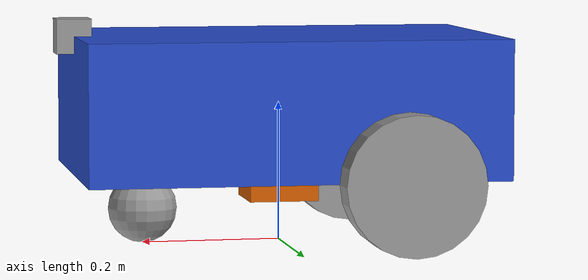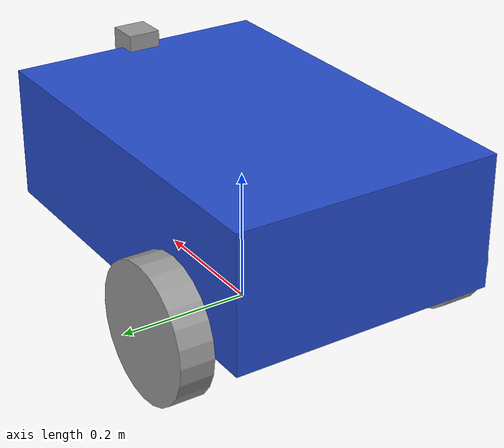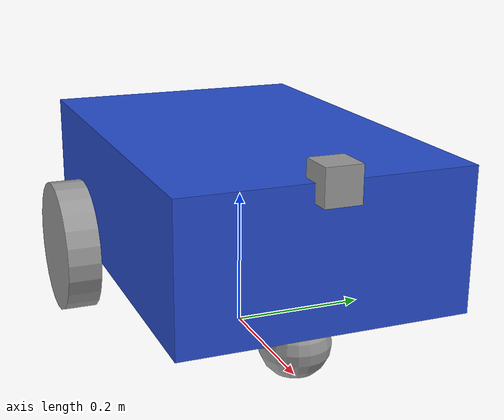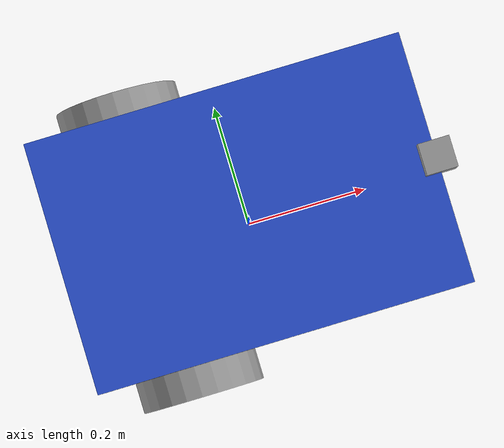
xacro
<?xml version="1.0"?>
<robot xmlns:xacro="http://www.ros.org/wiki/xacro">

    <!-- Set values each items -->

    <xacro:property name="base_length" value="0.6" />
    <xacro:property name="base_width" value="0.4" />
    <xacro:property name="base_height" value="0.2" />
    <xacro:property name="wheel_radius" value="0.1" />
    <xacro:property name="wheel_length" value="0.05" />

    <link name="base_footprint" />

    <!-- Set base box object -->

    <link name="base_link">
        <visual>
            <geometry>
                <box size="${base_length} ${base_width} ${base_height}" />
            </geometry>
            <origin xyz="0 0 ${base_height / 2.0}" rpy="0 0 0" />
            <material name="blue" />
        </visual>
        <collision>
            <geometry>
                <box size="${base_length} ${base_width} ${base_height}" />
            </geometry>
            <origin xyz="0 0 ${base_height / 2.0}" rpy="0 0 0" />
        </collision>
        <xacro:box_inertia m="5.0" l="${2*base_length}" w="${2*base_width}" h="${2*base_height}" xyz="0 0 ${base_height / 2.0}" rpy="0 0 0" />
    </link>

    <!-- Create commom object for wheels -->

    <xacro:macro name="wheel_link" params="prefix">
        <link name="${prefix}_wheel_link">
            <visual>
                <geometry>
                    <cylinder radius="${wheel_radius}" length="${wheel_length}" />
                </geometry>
                <origin xyz="0 0 0" rpy="${pi / 2.0} 0 0" />
                <material name="grey" />
            </visual>
            <collision>
                <geometry>
                    <cylinder radius="${wheel_radius}" length="${wheel_length}" />
                </geometry>
                <origin xyz="0 0 0" rpy="${pi / 2.0} 0 0" />
            </collision>
            <xacro:cylinder_inertia m="1.0" r="${2*wheel_radius}" h="${2*wheel_length}" xyz="0 0 0" rpy="${pi / 2.0} 0 0" />
        </link>
    </xacro:macro>

    <!-- Use commom object for wheels -->

    <xacro:wheel_link prefix="right" />
    <xacro:wheel_link prefix="left" />

    <!-- Set caster wheel -->

    <link name="caster_wheel_link">
        <visual>
            <geometry>
                <sphere radius="${wheel_radius / 2.0}" />
            </geometry>
            <origin xyz="0 0 0" rpy="0 0 0" />
            <material name="grey" />
        </visual>
        <collision>
            <geometry>
                <sphere radius="${wheel_radius / 2.0}" />
            </geometry>
            <origin xyz="0 0 0" rpy="0 0 0" />
        </collision>
        <xacro:sphere_inertia m="0.5" r="${2*wheel_radius / 2.0}" xyz="0 0 0" rpy="0 0 0" />
    </link>

    <!-- Set IMU sensor -->

    <link name="imu_link">
        <visual>
            <geometry>
                <box size="0.1 0.1 0.1"/>
            </geometry>
        </visual>

        <collision>
            <geometry>
                <box size="0.1 0.1 0.1"/>
            </geometry>
        </collision>

        <xacro:box_inertia m="0.1" l="0.1" w="0.1" h="0.1" xyz="0 0 0" rpy="0 0 0" />
    </link>

    <!-- Set lidar sensor -->

    <link name="lidar_link">
        <visual>
            <geometry>
                <box size="0.05 0.05 0.05" />
            </geometry>
            <origin xyz="0 0 0" rpy="0 0 0" />
            <material name="grey" />
        </visual>
        <collision>
            <geometry>
                <box size="0.05 0.05 0.05" />
            </geometry>
            <origin xyz="0 0 0" rpy="0 0 0" />
        </collision>
        <xacro:box_inertia m="0.2" l="0.5" w="0.5" h="0.5" xyz="0 0 5" rpy="0 0 0" />

    </link>

    <!-- Set joints -->

    <joint name="base_joint" type="fixed">
        <parent link="base_footprint" />
        <child link="base_link" />
        <origin xyz="0 0 ${wheel_radius}" rpy="0 0 0"/>
    </joint>

    <joint name="base_right_wheel_joint" type="continuous">
        <parent link="base_link" />
        <child link="right_wheel_link" />
        <origin xyz="${-base_length / 4.0} ${-(base_width + wheel_length) / 2.0} 0" rpy="0 0 0" />
        <axis xyz="0 1 0" />
    </joint>

    <joint name="base_left_wheel_joint" type="continuous">
        <parent link="base_link" />
        <child link="left_wheel_link" />
        <origin xyz="${-base_length / 4.0} ${(base_width + wheel_length) / 2.0} 0" rpy="0 0 0" />
        <axis xyz="0 1 0" />
    </joint>

    <joint name="base_caster_wheel_joint" type="fixed">
        <parent link="base_link" />
        <child link="caster_wheel_link" />
        <origin xyz="${base_length / 3.0} 0 ${-wheel_radius / 2.0}" rpy="0 0 0" />
    </joint>

    <joint name="imu_joint" type="fixed">
        <parent link="base_link"/>
        <child link="imu_link"/>
        <origin xyz="0 0 0.01"/>
    </joint>

    <joint name="lidar_joint" type="fixed">
        <parent link="base_link" />
        <child link="lidar_link" />
        <origin xyz="${base_length/2} 0 ${base_height}" rpy="0 0 0" />
    </joint>

</robot>
